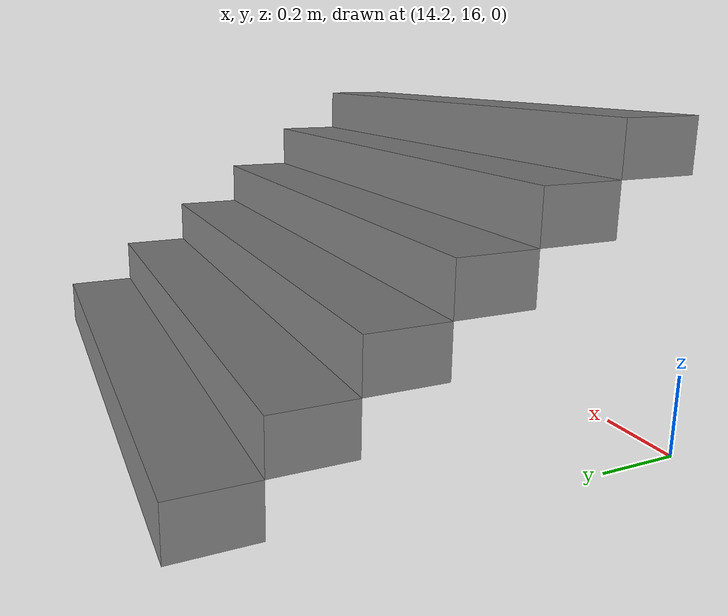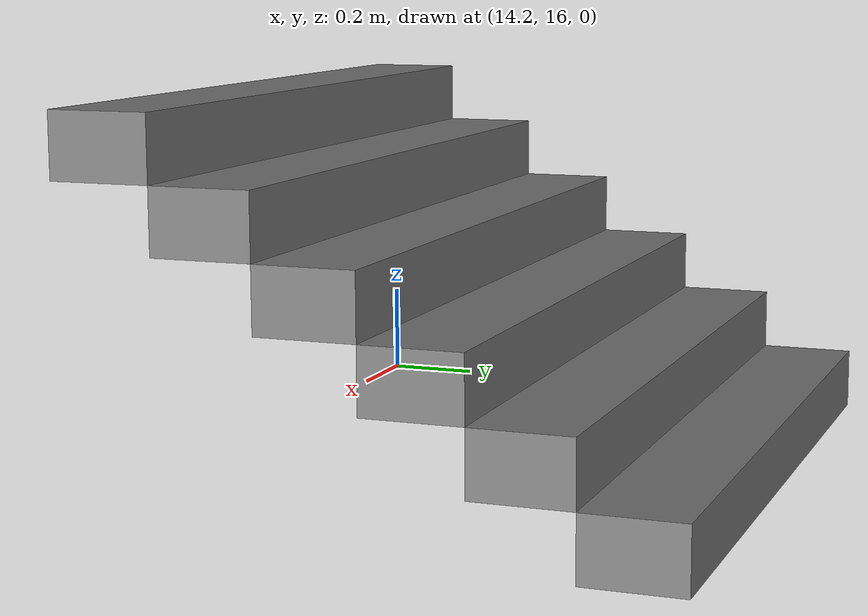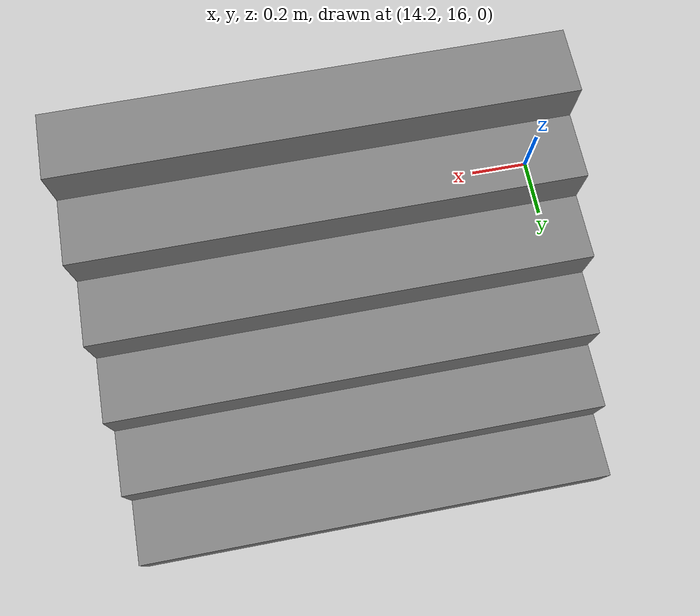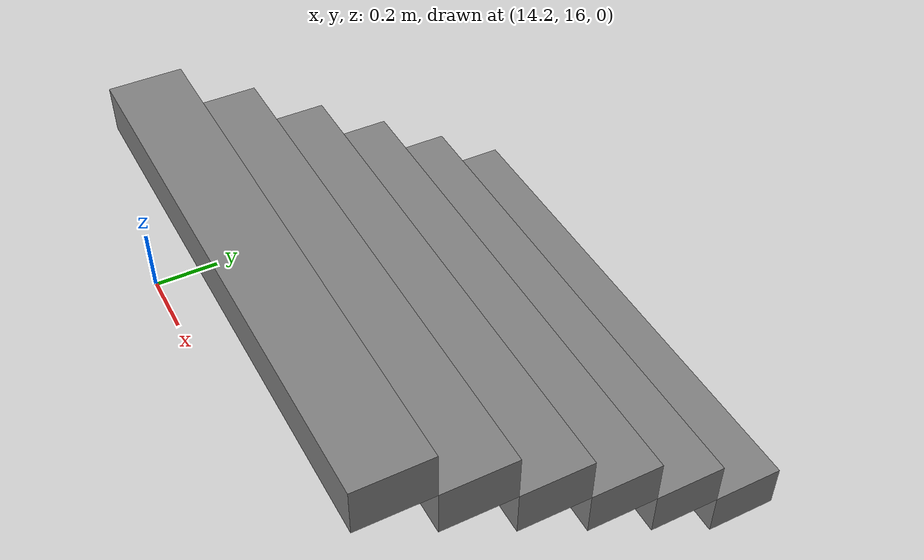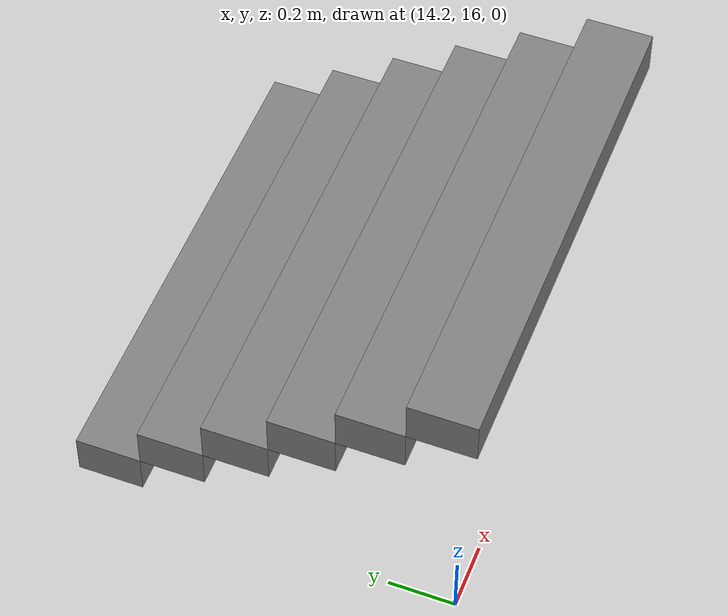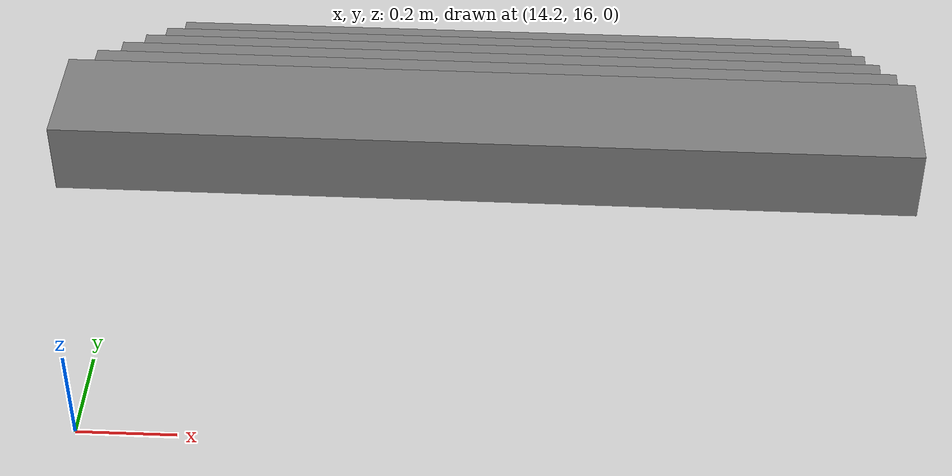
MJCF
<mujoco model="go2 scene">
  <statistic center="0 0 0.1" extent="0.8" />

  <visual>
    <headlight diffuse="0.6 0.6 0.6" ambient="0.3 0.3 0.3" specular="0 0 0" />
    <rgba haze="0.15 0.25 0.35 1" />
    <global azimuth="-130" elevation="-20" />
  </visual>

  <asset>
    <texture type="skybox" builtin="gradient" rgb1="0.3 0.5 0.7" rgb2="0 0 0" width="512" height="3072" />
  </asset>

  <worldbody>
  <geom pos="15 17.075000000000002 0.065" type="box" size="0.1 0.75 0.065" quat="0.7071067811865476 0.0 0.0 -0.7071067811865475" /><geom pos="15 16.875000000000003 0.195" type="box" size="0.1 0.75 0.065" quat="0.7071067811865476 0.0 0.0 -0.7071067811865475" /><geom pos="15.0 16.675 0.325" type="box" size="0.1 0.75 0.065" quat="0.7071067811865476 0.0 0.0 -0.7071067811865475" /><geom pos="15.0 16.475 0.455" type="box" size="0.1 0.75 0.065" quat="0.7071067811865476 0.0 0.0 -0.7071067811865475" /><geom pos="15.0 16.275 0.585" type="box" size="0.1 0.75 0.065" quat="0.7071067811865476 0.0 0.0 -0.7071067811865475" /><geom pos="15.0 16.075000000000002 0.7149999999999999" type="box" size="0.1 0.75 0.065" quat="0.7071067811865476 0.0 0.0 -0.7071067811865475" /></worldbody>
</mujoco>
